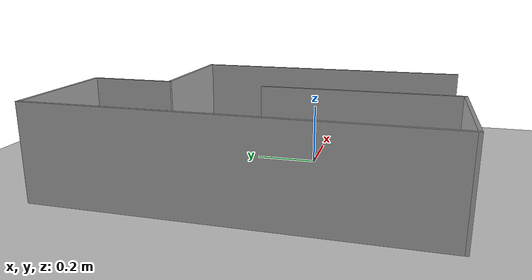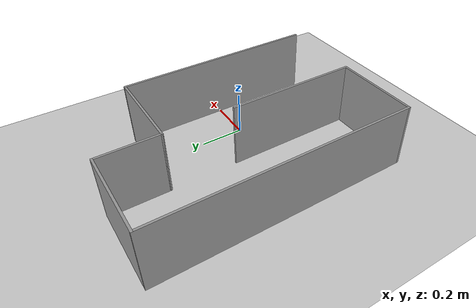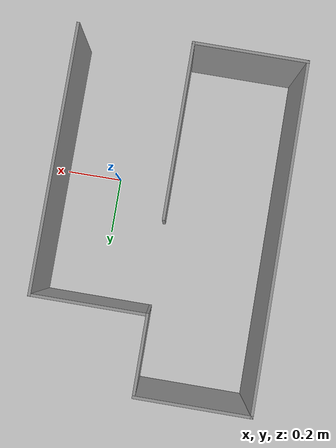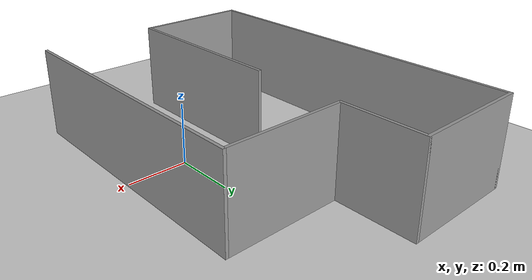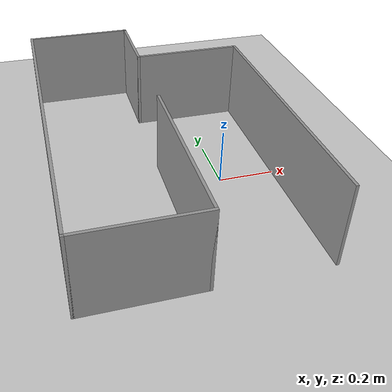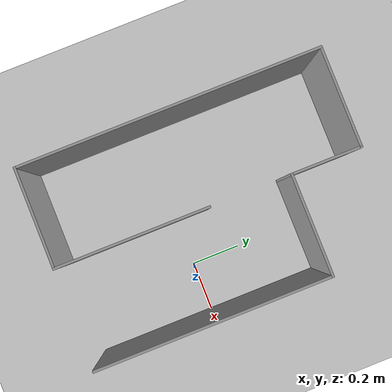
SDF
<sdf version="1.4">
  <world name="default">

    <scene>
      <ambient>0.4 0.4 0.4 1</ambient>
      <background>0.7 0.7 0.7 1</background>
      <shadows>true</shadows>
    </scene>

    <!-- A global light source -->
    <include>
      <uri>model://sun</uri>
    </include>

    <!-- A ground plane -->
    <include>
      <uri>model://ground_plane</uri>
    </include>

    <include>
      <uri>model://turtlebot3_custom_maze</uri>
    </include>

    <physics type="ode">
      <real_time_update_rate>1000.0</real_time_update_rate>
      <max_step_size>0.001</max_step_size>
      <real_time_factor>1</real_time_factor>
      <ode>
        <solver>
          <type>quick</type>
          <iters>150</iters>
          <precon_iters>0</precon_iters>
          <sor>1.400000</sor>
          <use_dynamic_moi_rescaling>1</use_dynamic_moi_rescaling>
        </solver>
        <constraints>
          <cfm>0.00001</cfm>
          <erp>0.2</erp>
          <contact_max_correcting_vel>2000.000000</contact_max_correcting_vel>
          <contact_surface_layer>0.01000</contact_surface_layer>
        </constraints>
      </ode>
    </physics>
  </world>

</sdf>

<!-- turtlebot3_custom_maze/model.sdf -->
<sdf version='1.7'>
  <model name='custom_maze'>
    <pose>-0.19 0.128 0 0 -0 0</pose>
    <link name='Wall_0'>
      <collision name='Wall_0_Collision'>
        <geometry>
          <box>
            <size>1.2 0.01 0.3</size>
          </box>
        </geometry>
        <pose>0 0 0.15 0 -0 0</pose>
      </collision>
      <visual name='Wall_0_Visual'>
        <pose>0 0 0.15 0 -0 0</pose>
        <geometry>
          <box>
            <size>1.2 0.01 0.3</size>
          </box>
        </geometry>
        <material>
          <script>
            <uri>file://media/materials/scripts/gazebo.material</uri>
            <name>Gazebo/Grey</name>
          </script>
          <ambient>1 1 1 1</ambient>
        </material>
        <meta>
          <layer>0</layer>
        </meta>
      </visual>
      <pose>-0.392 -0 0 0 -0 1.5708</pose>
    </link>
    <link name='Wall_10'>
      <collision name='Wall_10_Collision'>
        <geometry>
          <box>
            <size>0.93 0.01 0.3</size>
          </box>
        </geometry>
        <pose>0 0 0.15 0 -0 0</pose>
      </collision>
      <visual name='Wall_10_Visual'>
        <pose>0 0 0.15 0 -0 0</pose>
        <geometry>
          <box>
            <size>0.93 0.01 0.3</size>
          </box>
        </geometry>
        <material>
          <script>
            <uri>file://media/materials/scripts/gazebo.material</uri>
            <name>Gazebo/Grey</name>
          </script>
          <ambient>1 1 1 1</ambient>
        </material>
        <meta>
          <layer>0</layer>
        </meta>
      </visual>
      <pose>0.392 -0.135 0 0 -0 -1.5708</pose>
    </link>
    <link name='Wall_12'>
      <collision name='Wall_12_Collision'>
        <geometry>
          <box>
            <size>0.4 0.01 0.3</size>
          </box>
        </geometry>
        <pose>0 0 0.15 0 -0 0</pose>
      </collision>
      <visual name='Wall_12_Visual'>
        <pose>0 0 0.15 0 -0 0</pose>
        <geometry>
          <box>
            <size>0.4 0.01 0.3</size>
          </box>
        </geometry>
        <material>
          <script>
            <uri>file://media/materials/scripts/gazebo.material</uri>
            <name>Gazebo/Grey</name>
          </script>
          <ambient>1 1 1 1</ambient>
        </material>
        <meta>
          <layer>0</layer>
        </meta>
      </visual>
      <pose>-0.197 -0.595 0 0 -0 0</pose>
    </link>
    <link name='Wall_14'>
      <collision name='Wall_14_Collision'>
        <geometry>
          <box>
            <size>0.61 0.01 0.3</size>
          </box>
        </geometry>
        <pose>0 0 0.15 0 -0 0</pose>
      </collision>
      <visual name='Wall_14_Visual'>
        <pose>0 0 0.15 0 -0 0</pose>
        <geometry>
          <box>
            <size>0.61 0.01 0.3</size>
          </box>
        </geometry>
        <material>
          <script>
            <uri>file://media/materials/scripts/gazebo.material</uri>
            <name>Gazebo/Grey</name>
          </script>
          <ambient>1 1 1 1</ambient>
        </material>
        <meta>
          <layer>0</layer>
        </meta>
      </visual>
      <pose>-0.002 -0.295 0 0 -0 1.5708</pose>
    </link>
    <link name='Wall_2'>
      <collision name='Wall_2_Collision'>
        <geometry>
          <box>
            <size>0.4 0.01 0.3</size>
          </box>
        </geometry>
        <pose>0 0 0.15 0 -0 0</pose>
      </collision>
      <visual name='Wall_2_Visual'>
        <pose>0 0 0.15 0 -0 0</pose>
        <geometry>
          <box>
            <size>0.4 0.01 0.3</size>
          </box>
        </geometry>
        <material>
          <script>
            <uri>file://media/materials/scripts/gazebo.material</uri>
            <name>Gazebo/Grey</name>
          </script>
          <ambient>1 1 1 1</ambient>
        </material>
        <meta>
          <layer>0</layer>
        </meta>
      </visual>
      <pose>-0.197 0.595 0 0 -0 0</pose>
    </link>
    <link name='Wall_4'>
      <collision name='Wall_4_Collision'>
        <geometry>
          <box>
            <size>0.28 0.01 0.3</size>
          </box>
        </geometry>
        <pose>0 0 0.15 0 -0 0</pose>
      </collision>
      <visual name='Wall_4_Visual'>
        <pose>0 0 0.15 0 -0 0</pose>
        <geometry>
          <box>
            <size>0.28 0.01 0.3</size>
          </box>
        </geometry>
        <material>
          <script>
            <uri>file://media/materials/scripts/gazebo.material</uri>
            <name>Gazebo/Grey</name>
          </script>
          <ambient>1 1 1 1</ambient>
        </material>
        <meta>
          <layer>0</layer>
        </meta>
      </visual>
      <pose>-0.002 0.46 0 0 -0 -1.5708</pose>
    </link>
    <link name='Wall_8'>
      <collision name='Wall_8_Collision'>
        <geometry>
          <box>
            <size>0.404001 0.01 0.3</size>
          </box>
        </geometry>
        <pose>0 0 0.15 0 -0 0</pose>
      </collision>
      <visual name='Wall_8_Visual'>
        <pose>0 0 0.15 0 -0 0</pose>
        <geometry>
          <box>
            <size>0.404001 0.01 0.3</size>
          </box>
        </geometry>
        <material>
          <script>
            <uri>file://media/materials/scripts/gazebo.material</uri>
            <name>Gazebo/Grey</name>
          </script>
          <ambient>1 1 1 1</ambient>
        </material>
        <meta>
          <layer>0</layer>
        </meta>
      </visual>
      <pose>0.195 0.325 0 0 -0 3.14159</pose>
    </link>
    <static>1</static>
  </model>
</sdf>
